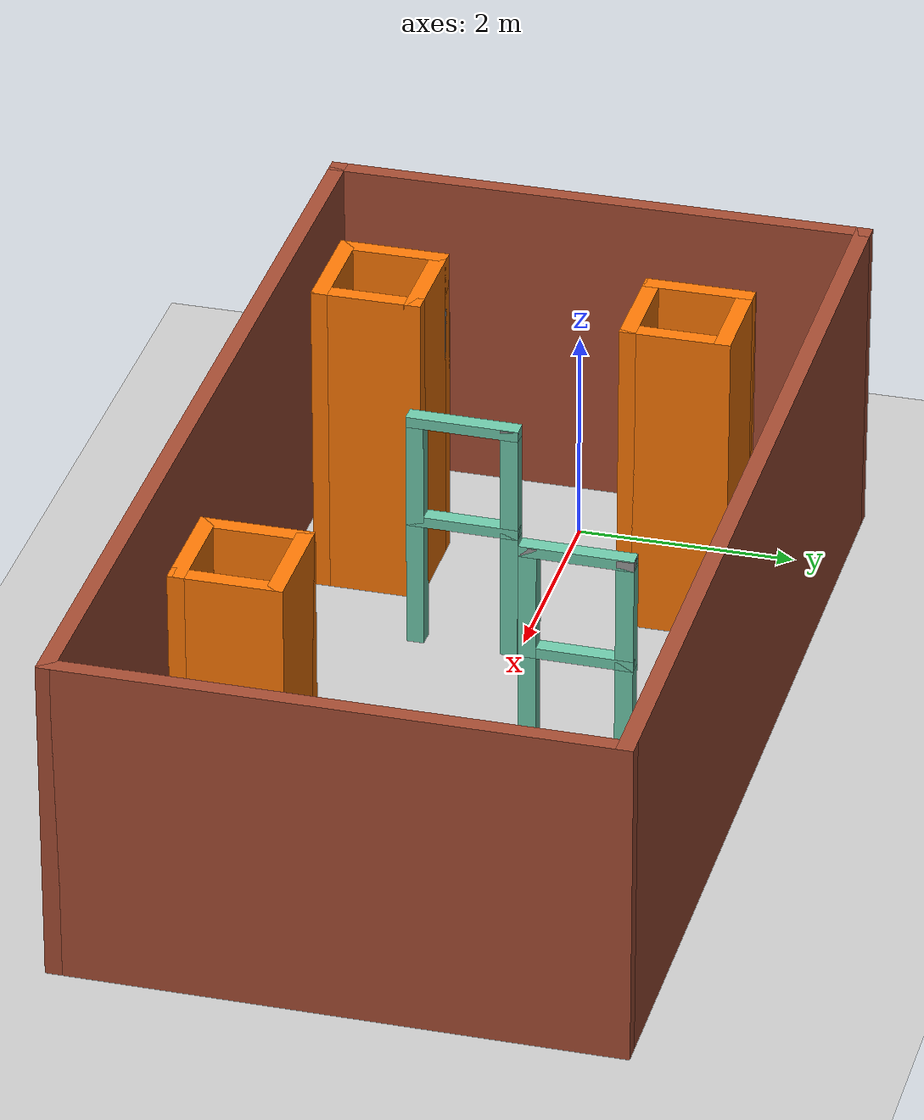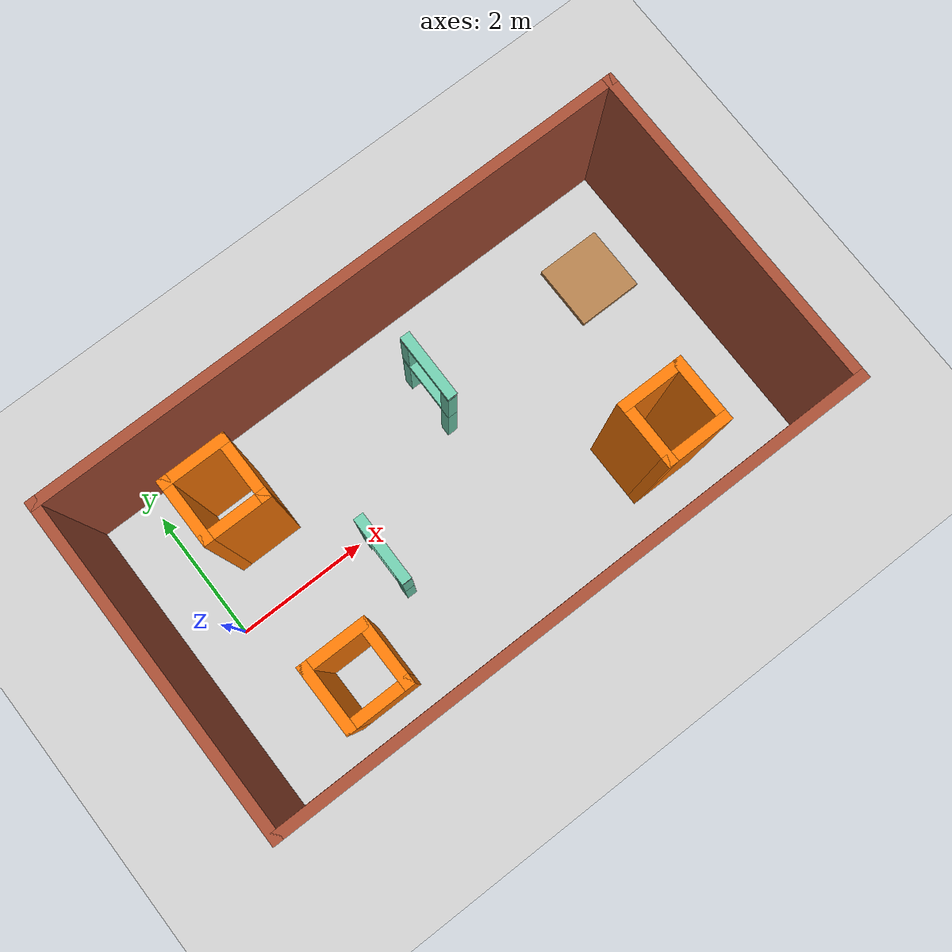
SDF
<sdf version="1.6">
 <world name="default">
  <light name="sun" type="directional">
   <pose>0 0 10 0 -0 0</pose>
   <diffuse>0.8 0.8 0.8 1</diffuse>
   <specular>0.2 0.2 0.2 1</specular>
   <attenuation>
    <range>1000</range>
    <constant>0.9</constant>
    <linear>0.01</linear>
    <quadratic>0.001</quadratic>
   </attenuation>
   <direction>-0.5 0.1 -0.9</direction>
  </light>
  <model name="ground_plane">
   <static>1</static>
   <link name="link">
    <collision name="collision">
     <geometry><plane><normal>0 0 1</normal><size>100 100</size></plane></geometry>
     <surface><friction><ode><mu>100</mu><mu2>50</mu2></ode></friction></surface>
    </collision>
    <visual name="visual">
     <cast_shadows>0</cast_shadows>
     <geometry><plane><normal>0 0 1</normal><size>100 100</size></plane></geometry>
     <material>
      <script><uri>file://media/materials/scripts/gazebo.material</uri><name>Gazebo/Grey</name></script>
     </material>
    </visual>
   </link>
  </model>
  <gravity>0 0 -9.8</gravity>
  <magnetic_field>6e-06 2.3e-05 -4.2e-05</magnetic_field>
  <atmosphere type="adiabatic"/>
  <physics name="default_physics" default="0" type="ode">
   <max_step_size>0.001</max_step_size>
   <real_time_factor>1</real_time_factor>
   <real_time_update_rate>1000</real_time_update_rate>
  </physics>
  <scene><ambient>0.4 0.4 0.4 1</ambient><background>0.7 0.7 0.7 1</background><shadows>1</shadows></scene>
  <spherical_coordinates>
   <surface_model>EARTH_WGS84</surface_model>
   <latitude_deg>0</latitude_deg>
   <longitude_deg>0</longitude_deg>
   <elevation>0</elevation>
   <heading_deg>0</heading_deg>
  </spherical_coordinates>
  <model name="zhuzi_1.2m">
   <pose>2.16567 -0.510013 0 0 -0 1.56043</pose>
   <link name="Floor_0">
    <collision name="Floor_0_Collision">
     <geometry><box><size>1.02 0.15 0.1</size></box></geometry>
     <pose>0 0 0.05 0 -0 0</pose>
    </collision>
    <visual name="Floor_0_Visual">
     <pose>0 0 0.05 0 -0 0</pose>
     <geometry><box><size>1.02 0.15 0.1</size></box></geometry>
     <material>
      <script><uri>file://media/materials/scripts/gazebo.material</uri><name>Gazebo/Grey</name></script>
      <ambient>0.435294 0.796078 0.67451 1</ambient>
     </material>
     <meta><layer>1</layer></meta>
    </visual>
    <pose>0 0 1.2 0 -0 0</pose>
   </link>
   <link name="Floor_1">
    <collision name="Floor_1_Collision">
     <geometry><box><size>1.02 0.15 0.1</size></box></geometry>
     <pose>0 0 0.05 0 -0 0</pose>
    </collision>
    <visual name="Floor_1_Visual">
     <pose>0 0 0.05 0 -0 0</pose>
     <geometry><box><size>1.02 0.15 0.1</size></box></geometry>
     <material>
      <script><uri>file://media/materials/scripts/gazebo.material</uri><name>Gazebo/Grey</name></script>
      <ambient>0.435294 0.796078 0.67451 1</ambient>
     </material>
     <meta><layer>2</layer></meta>
    </visual>
    <pose>0 0 2.2 0 -0 0</pose>
   </link>
   <link name="Wall_0">
    <collision name="Wall_0_Collision">
     <geometry><box><size>0.16 0.15 1.2</size></box></geometry>
     <pose>0 0 0.6 0 -0 0</pose>
    </collision>
    <visual name="Wall_0_Visual">
     <pose>0 0 0.6 0 -0 0</pose>
     <geometry><box><size>0.16 0.15 1.2</size></box></geometry>
     <material>
      <script><uri>file://media/materials/scripts/gazebo.material</uri><name>Gazebo/Grey</name></script>
      <ambient>0.435294 0.796078 0.67451 1</ambient>
     </material>
     <meta><layer>0</layer></meta>
    </visual>
    <pose>-0.43 0 0 0 -0 0</pose>
   </link>
   <link name="Wall_2">
    <collision name="Wall_2_Collision">
     <geometry><box><size>0.16 0.15 1.2</size></box></geometry>
     <pose>0 0 0.6 0 -0 0</pose>
    </collision>
    <visual name="Wall_2_Visual">
     <pose>0 0 0.6 0 -0 0</pose>
     <geometry><box><size>0.16 0.15 1.2</size></box></geometry>
     <material>
      <script><uri>file://media/materials/scripts/gazebo.material</uri><name>Gazebo/Grey</name></script>
      <ambient>0.435294 0.796078 0.67451 1</ambient>
     </material>
     <meta><layer>0</layer></meta>
    </visual>
    <pose>0.43 0 0 0 -0 0</pose>
   </link>
   <link name="Wall_6">
    <collision name="Wall_6_Collision">
     <geometry><box><size>0.16 0.15 1</size></box></geometry>
     <pose>0 0 0.5 0 -0 0</pose>
    </collision>
    <visual name="Wall_6_Visual">
     <pose>0 0 0.5 0 -0 0</pose>
     <geometry><box><size>0.16 0.15 1</size></box></geometry>
     <material>
      <script><uri>file://media/materials/scripts/gazebo.material</uri><name>Gazebo/Grey</name></script>
      <ambient>0.435294 0.796078 0.67451 1</ambient>
     </material>
     <meta><layer>1</layer></meta>
    </visual>
    <pose>-0.43 0 1.2 0 -0 0</pose>
   </link>
   <link name="Wall_7">
    <collision name="Wall_7_Collision">
     <geometry><box><size>0.16 0.15 1</size></box></geometry>
     <pose>0 0 0.5 0 -0 0</pose>
    </collision>
    <visual name="Wall_7_Visual">
     <pose>0 0 0.5 0 -0 0</pose>
     <geometry><box><size>0.16 0.15 1</size></box></geometry>
     <material>
      <script><uri>file://media/materials/scripts/gazebo.material</uri><name>Gazebo/Grey</name></script>
      <ambient>0.435294 0.796078 0.67451 1</ambient>
     </material>
     <meta><layer>1</layer></meta>
    </visual>
    <pose>0.43 0 1.2 0 -0 0</pose>
   </link>
   <link name="Wall_8">
    <collision name="Wall_8_Collision">
     <geometry><box><size>0.16 0.15 0.09</size></box></geometry>
     <pose>0 0 0.045 0 -0 0</pose>
    </collision>
    <visual name="Wall_8_Visual">
     <pose>0 0 0.045 0 -0 0</pose>
     <geometry><box><size>0.16 0.15 0.09</size></box></geometry>
     <material>
      <script><uri>file://media/materials/scripts/gazebo.material</uri><name>Gazebo/Grey</name></script>
      <ambient>1 1 1 1</ambient>
     </material>
     <meta><layer>2</layer></meta>
    </visual>
    <pose>-0.43 0 2.2 0 -0 0</pose>
   </link>
   <link name="Wall_9">
    <collision name="Wall_9_Collision">
     <geometry><box><size>0.16 0.15 0.09</size></box></geometry>
     <pose>0 0 0.045 0 -0 0</pose>
    </collision>
    <visual name="Wall_9_Visual">
     <pose>0 0 0.045 0 -0 0</pose>
     <geometry><box><size>0.16 0.15 0.09</size></box></geometry>
     <material>
      <script><uri>file://media/materials/scripts/gazebo.material</uri><name>Gazebo/Grey</name></script>
      <ambient>1 1 1 1</ambient>
     </material>
     <meta><layer>2</layer></meta>
    </visual>
    <pose>0.43 0 2.2 0 -0 0</pose>
   </link>
   <static>1</static>
  </model>
  <model name="zhuzi_1.2m_clone">
   <pose>4.04105 0.991637 0 0 -0 1.56248</pose>
   <link name="Floor_0">
    <collision name="Floor_0_Collision">
     <geometry><box><size>1.02 0.15 0.1</size></box></geometry>
     <pose>0 0 0.05 0 -0 0</pose>
    </collision>
    <visual name="Floor_0_Visual">
     <pose>0 0 0.05 0 -0 0</pose>
     <geometry><box><size>1.02 0.15 0.1</size></box></geometry>
     <material>
      <script><uri>file://media/materials/scripts/gazebo.material</uri><name>Gazebo/Grey</name></script>
      <ambient>0.435294 0.796078 0.67451 1</ambient>
     </material>
     <meta><layer>1</layer></meta>
    </visual>
    <pose>0 0 1.2 0 -0 0</pose>
   </link>
   <link name="Floor_1">
    <collision name="Floor_1_Collision">
     <geometry><box><size>1.02 0.15 0.1</size></box></geometry>
     <pose>0 0 0.05 0 -0 0</pose>
    </collision>
    <visual name="Floor_1_Visual">
     <pose>0 0 0.05 0 -0 0</pose>
     <geometry><box><size>1.02 0.15 0.1</size></box></geometry>
     <material>
      <script><uri>file://media/materials/scripts/gazebo.material</uri><name>Gazebo/Grey</name></script>
      <ambient>0.435294 0.796078 0.67451 1</ambient>
     </material>
     <meta><layer>2</layer></meta>
    </visual>
    <pose>0 0 2.2 0 -0 0</pose>
   </link>
   <link name="Wall_0">
    <collision name="Wall_0_Collision">
     <geometry><box><size>0.16 0.15 1.2</size></box></geometry>
     <pose>0 0 0.6 0 -0 0</pose>
    </collision>
    <visual name="Wall_0_Visual">
     <pose>0 0 0.6 0 -0 0</pose>
     <geometry><box><size>0.16 0.15 1.2</size></box></geometry>
     <material>
      <script><uri>file://media/materials/scripts/gazebo.material</uri><name>Gazebo/Grey</name></script>
      <ambient>0.435294 0.796078 0.67451 1</ambient>
     </material>
     <meta><layer>0</layer></meta>
    </visual>
    <pose>-0.43 0 0 0 -0 0</pose>
   </link>
   <link name="Wall_2">
    <collision name="Wall_2_Collision">
     <geometry><box><size>0.16 0.15 1.2</size></box></geometry>
     <pose>0 0 0.6 0 -0 0</pose>
    </collision>
    <visual name="Wall_2_Visual">
     <pose>0 0 0.6 0 -0 0</pose>
     <geometry><box><size>0.16 0.15 1.2</size></box></geometry>
     <material>
      <script><uri>file://media/materials/scripts/gazebo.material</uri><name>Gazebo/Grey</name></script>
      <ambient>0.435294 0.796078 0.67451 1</ambient>
     </material>
     <meta><layer>0</layer></meta>
    </visual>
    <pose>0.43 0 0 0 -0 0</pose>
   </link>
   <link name="Wall_6">
    <collision name="Wall_6_Collision">
     <geometry><box><size>0.16 0.15 1</size></box></geometry>
     <pose>0 0 0.5 0 -0 0</pose>
    </collision>
    <visual name="Wall_6_Visual">
     <pose>0 0 0.5 0 -0 0</pose>
     <geometry><box><size>0.16 0.15 1</size></box></geometry>
     <material>
      <script><uri>file://media/materials/scripts/gazebo.material</uri><name>Gazebo/Grey</name></script>
      <ambient>0.435294 0.796078 0.67451 1</ambient>
     </material>
     <meta><layer>1</layer></meta>
    </visual>
    <pose>-0.43 0 1.2 0 -0 0</pose>
   </link>
   <link name="Wall_7">
    <collision name="Wall_7_Collision">
     <geometry><box><size>0.16 0.15 1</size></box></geometry>
     <pose>0 0 0.5 0 -0 0</pose>
    </collision>
    <visual name="Wall_7_Visual">
     <pose>0 0 0.5 0 -0 0</pose>
     <geometry><box><size>0.16 0.15 1</size></box></geometry>
     <material>
      <script><uri>file://media/materials/scripts/gazebo.material</uri><name>Gazebo/Grey</name></script>
      <ambient>0.435294 0.796078 0.67451 1</ambient>
     </material>
     <meta><layer>1</layer></meta>
    </visual>
    <pose>0.43 0 1.2 0 -0 0</pose>
   </link>
   <link name="Wall_8">
    <collision name="Wall_8_Collision">
     <geometry><box><size>0.16 0.15 0.09</size></box></geometry>
     <pose>0 0 0.045 0 -0 0</pose>
    </collision>
    <visual name="Wall_8_Visual">
     <pose>0 0 0.045 0 -0 0</pose>
     <geometry><box><size>0.16 0.15 0.09</size></box></geometry>
     <material>
      <script><uri>file://media/materials/scripts/gazebo.material</uri><name>Gazebo/Grey</name></script>
      <ambient>1 1 1 1</ambient>
     </material>
     <meta><layer>2</layer></meta>
    </visual>
    <pose>-0.43 0 2.2 0 -0 0</pose>
   </link>
   <link name="Wall_9">
    <collision name="Wall_9_Collision">
     <geometry><box><size>0.16 0.15 0.09</size></box></geometry>
     <pose>0 0 0.045 0 -0 0</pose>
    </collision>
    <visual name="Wall_9_Visual">
     <pose>0 0 0.045 0 -0 0</pose>
     <geometry><box><size>0.16 0.15 0.09</size></box></geometry>
     <material>
      <script><uri>file://media/materials/scripts/gazebo.material</uri><name>Gazebo/Grey</name></script>
      <ambient>1 1 1 1</ambient>
     </material>
     <meta><layer>2</layer></meta>
    </visual>
    <pose>0.43 0 2.2 0 -0 0</pose>
   </link>
   <static>1</static>
  </model>
  <model name="fangjian">
   <pose>3.59658 -0.047022 0 0 -0 0</pose>
   <link name="Wall_11">
    <collision name="Wall_11_Collision">
     <geometry><box><size>9 0.15 3</size></box></geometry>
     <pose>0 0 1.5 0 -0 0</pose>
    </collision>
    <visual name="Wall_11_Visual">
     <pose>0 0 1.5 0 -0 0</pose>
     <geometry><box><size>9 0.15 3</size></box></geometry>
     <material>
      <script><uri>file://media/materials/scripts/gazebo.material</uri><name>Gazebo/Bricks</name></script>
      <ambient>1 1 1 1</ambient>
     </material>
     <meta><layer>0</layer></meta>
    </visual>
    <pose>-0 2.434 0 0 -0 0</pose>
   </link>
   <link name="Wall_12">
    <collision name="Wall_12_Collision">
     <geometry><box><size>5.017 0.15 3</size></box></geometry>
     <pose>0 0 1.5 0 -0 0</pose>
    </collision>
    <visual name="Wall_12_Visual">
     <pose>0 0 1.5 0 -0 0</pose>
     <geometry><box><size>5.017 0.15 3</size></box></geometry>
     <material>
      <script><uri>file://media/materials/scripts/gazebo.material</uri><name>Gazebo/Bricks</name></script>
      <ambient>1 1 1 1</ambient>
     </material>
     <meta><layer>0</layer></meta>
    </visual>
    <pose>4.425 0.000504 0 0 -0 -1.5708</pose>
   </link>
   <link name="Wall_13">
    <collision name="Wall_13_Collision">
     <geometry><box><size>9 0.15 3</size></box></geometry>
     <pose>0 0 1.5 0 -0 0</pose>
    </collision>
    <visual name="Wall_13_Visual">
     <pose>0 0 1.5 0 -0 0</pose>
     <geometry><box><size>9 0.15 3</size></box></geometry>
     <material>
      <script><uri>file://media/materials/scripts/gazebo.material</uri><name>Gazebo/Bricks</name></script>
      <ambient>1 1 1 1</ambient>
     </material>
     <meta><layer>0</layer></meta>
    </visual>
    <pose>-0 -2.4335 0 0 -0 -3.14148</pose>
   </link>
   <link name="Wall_14">
    <collision name="Wall_14_Collision">
     <geometry><box><size>5.018 0.15 3</size></box></geometry>
     <pose>0 0 1.5 0 -0 0</pose>
    </collision>
    <visual name="Wall_14_Visual">
     <pose>0 0 1.5 0 -0 0</pose>
     <geometry><box><size>5.018 0.15 3</size></box></geometry>
     <material>
      <script><uri>file://media/materials/scripts/gazebo.material</uri><name>Gazebo/Bricks</name></script>
      <ambient>1 1 1 1</ambient>
     </material>
     <meta><layer>0</layer></meta>
    </visual>
    <pose>-4.425 4e-06 0 0 -0 1.5708</pose>
   </link>
   <static>1</static>
  </model>
  <model name="zhuzi">
   <pose>1.00373 -1.58252 0 0 -0 0</pose>
   <link name="Wall_0">
    <collision name="Wall_0_Collision">
     <geometry><box><size>1 0.15 3</size></box></geometry>
     <pose>0 0 1.5 0 -0 0</pose>
    </collision>
    <visual name="Wall_0_Visual">
     <pose>0 0 1.5 0 -0 0</pose>
     <geometry><box><size>1 0.15 3</size></box></geometry>
     <material>
      <script><uri>file://media/materials/scripts/gazebo.material</uri><name>Gazebo/Grey</name></script>
      <ambient>0.996078 0.47451 0.0196078 1</ambient>
     </material>
     <meta><layer>0</layer></meta>
    </visual>
    <pose>0 0.425 0 0 -0 0</pose>
   </link>
   <link name="Wall_1">
    <collision name="Wall_1_Collision">
     <geometry><box><size>1 0.15 3</size></box></geometry>
     <pose>0 0 1.5 0 -0 0</pose>
    </collision>
    <visual name="Wall_1_Visual">
     <pose>0 0 1.5 0 -0 0</pose>
     <geometry><box><size>1 0.15 3</size></box></geometry>
     <material>
      <script><uri>file://media/materials/scripts/gazebo.material</uri><name>Gazebo/Grey</name></script>
      <ambient>0.996078 0.47451 0.0196078 1</ambient>
     </material>
     <meta><layer>0</layer></meta>
    </visual>
    <pose>0.425 -0 0 0 -0 -1.5708</pose>
   </link>
   <link name="Wall_2">
    <collision name="Wall_2_Collision">
     <geometry><box><size>1 0.15 3</size></box></geometry>
     <pose>0 0 1.5 0 -0 0</pose>
    </collision>
    <visual name="Wall_2_Visual">
     <pose>0 0 1.5 0 -0 0</pose>
     <geometry><box><size>1 0.15 3</size></box></geometry>
     <material>
      <script><uri>file://media/materials/scripts/gazebo.material</uri><name>Gazebo/Grey</name></script>
      <ambient>0.996078 0.47451 0.0196078 1</ambient>
     </material>
     <meta><layer>0</layer></meta>
    </visual>
    <pose>0 -0.425 0 0 -0 3.14159</pose>
   </link>
   <link name="Wall_3">
    <collision name="Wall_3_Collision">
     <geometry><box><size>1 0.15 3</size></box></geometry>
     <pose>0 0 1.5 0 -0 0</pose>
    </collision>
    <visual name="Wall_3_Visual">
     <pose>0 0 1.5 0 -0 0</pose>
     <geometry><box><size>1 0.15 3</size></box></geometry>
     <material>
      <script><uri>file://media/materials/scripts/gazebo.material</uri><name>Gazebo/Grey</name></script>
      <ambient>0.996078 0.47451 0.0196078 1</ambient>
     </material>
     <meta><layer>0</layer></meta>
    </visual>
    <pose>-0.425 -0 0 0 -0 1.5708</pose>
   </link>
   <link name="Wall_4">
    <collision name="Wall_4_Collision">
     <geometry><box><size>0.15 0.15 2.5</size></box></geometry>
     <pose>0 0 1.25 0 -0 0</pose>
    </collision>
    <visual name="Wall_4_Visual">
     <pose>0 0 1.25 0 -0 0</pose>
     <geometry><box><size>0.15 0.15 2.5</size></box></geometry>
     <material>
      <script><uri>file://media/materials/scripts/gazebo.material</uri><name>Gazebo/Grey</name></script>
      <ambient>1 1 1 1</ambient>
     </material>
     <meta><layer>0</layer></meta>
    </visual>
    <pose>-0.425 0.425 0 0 -0 0</pose>
   </link>
   <static>1</static>
  </model>
  <model name="zhuzi_0">
   <pose>0.986806 1.21192 0 0 -0 0</pose>
   <link name="Wall_0">
    <collision name="Wall_0_Collision">
     <geometry><box><size>1 0.15 3</size></box></geometry>
     <pose>0 0 1.5 0 -0 0</pose>
    </collision>
    <visual name="Wall_0_Visual">
     <pose>0 0 1.5 0 -0 0</pose>
     <geometry><box><size>1 0.15 3</size></box></geometry>
     <material>
      <script><uri>file://media/materials/scripts/gazebo.material</uri><name>Gazebo/Grey</name></script>
      <ambient>0.996078 0.47451 0.0196078 1</ambient>
     </material>
     <meta><layer>0</layer></meta>
    </visual>
    <pose>0 0.425 0 0 -0 0</pose>
   </link>
   <link name="Wall_1">
    <collision name="Wall_1_Collision">
     <geometry><box><size>1 0.15 3</size></box></geometry>
     <pose>0 0 1.5 0 -0 0</pose>
    </collision>
    <visual name="Wall_1_Visual">
     <pose>0 0 1.5 0 -0 0</pose>
     <geometry><box><size>1 0.15 3</size></box></geometry>
     <material>
      <script><uri>file://media/materials/scripts/gazebo.material</uri><name>Gazebo/Grey</name></script>
      <ambient>0.996078 0.47451 0.0196078 1</ambient>
     </material>
     <meta><layer>0</layer></meta>
    </visual>
    <pose>0.425 -0 0 0 -0 -1.5708</pose>
   </link>
   <link name="Wall_2">
    <collision name="Wall_2_Collision">
     <geometry><box><size>1 0.15 3</size></box></geometry>
     <pose>0 0 1.5 0 -0 0</pose>
    </collision>
    <visual name="Wall_2_Visual">
     <pose>0 0 1.5 0 -0 0</pose>
     <geometry><box><size>1 0.15 3</size></box></geometry>
     <material>
      <script><uri>file://media/materials/scripts/gazebo.material</uri><name>Gazebo/Grey</name></script>
      <ambient>0.996078 0.47451 0.0196078 1</ambient>
     </material>
     <meta><layer>0</layer></meta>
    </visual>
    <pose>0 -0.425 0 0 -0 3.14159</pose>
   </link>
   <link name="Wall_3">
    <collision name="Wall_3_Collision">
     <geometry><box><size>1 0.15 3</size></box></geometry>
     <pose>0 0 1.5 0 -0 0</pose>
    </collision>
    <visual name="Wall_3_Visual">
     <pose>0 0 1.5 0 -0 0</pose>
     <geometry><box><size>1 0.15 3</size></box></geometry>
     <material>
      <script><uri>file://media/materials/scripts/gazebo.material</uri><name>Gazebo/Grey</name></script>
      <ambient>0.996078 0.47451 0.0196078 1</ambient>
     </material>
     <meta><layer>0</layer></meta>
    </visual>
    <pose>-0.425 -0 0 0 -0 1.5708</pose>
   </link>
   <link name="Wall_4">
    <collision name="Wall_4_Collision">
     <geometry><box><size>0.15 0.15 2.5</size></box></geometry>
     <pose>0 0 1.25 0 -0 0</pose>
    </collision>
    <visual name="Wall_4_Visual">
     <pose>0 0 1.25 0 -0 0</pose>
     <geometry><box><size>0.15 0.15 2.5</size></box></geometry>
     <material>
      <script><uri>file://media/materials/scripts/gazebo.material</uri><name>Gazebo/Grey</name></script>
      <ambient>1 1 1 1</ambient>
     </material>
     <meta><layer>0</layer></meta>
    </visual>
    <pose>-0.425 0.425 0 0 -0 0</pose>
   </link>
   <static>1</static>
  </model>
  <model name="zhuzi_1">
   <pose>5.95012 -1.42787 0 0 -0 0</pose>
   <link name="Wall_0">
    <collision name="Wall_0_Collision">
     <geometry><box><size>1 0.15 3</size></box></geometry>
     <pose>0 0 1.5 0 -0 0</pose>
    </collision>
    <visual name="Wall_0_Visual">
     <pose>0 0 1.5 0 -0 0</pose>
     <geometry><box><size>1 0.15 3</size></box></geometry>
     <material>
      <script><uri>file://media/materials/scripts/gazebo.material</uri><name>Gazebo/Grey</name></script>
      <ambient>0.996078 0.47451 0.0196078 1</ambient>
     </material>
     <meta><layer>0</layer></meta>
    </visual>
    <pose>0 0.425 0 0 -0 0</pose>
   </link>
   <link name="Wall_1">
    <collision name="Wall_1_Collision">
     <geometry><box><size>1 0.15 3</size></box></geometry>
     <pose>0 0 1.5 0 -0 0</pose>
    </collision>
    <visual name="Wall_1_Visual">
     <pose>0 0 1.5 0 -0 0</pose>
     <geometry><box><size>1 0.15 3</size></box></geometry>
     <material>
      <script><uri>file://media/materials/scripts/gazebo.material</uri><name>Gazebo/Grey</name></script>
      <ambient>0.996078 0.47451 0.0196078 1</ambient>
     </material>
     <meta><layer>0</layer></meta>
    </visual>
    <pose>0.425 -0 0 0 -0 -1.5708</pose>
   </link>
   <link name="Wall_2">
    <collision name="Wall_2_Collision">
     <geometry><box><size>1 0.15 3</size></box></geometry>
     <pose>0 0 1.5 0 -0 0</pose>
    </collision>
    <visual name="Wall_2_Visual">
     <pose>0 0 1.5 0 -0 0</pose>
     <geometry><box><size>1 0.15 3</size></box></geometry>
     <material>
      <script><uri>file://media/materials/scripts/gazebo.material</uri><name>Gazebo/Grey</name></script>
      <ambient>0.996078 0.47451 0.0196078 1</ambient>
     </material>
     <meta><layer>0</layer></meta>
    </visual>
    <pose>0 -0.425 0 0 -0 3.14159</pose>
   </link>
   <link name="Wall_3">
    <collision name="Wall_3_Collision">
     <geometry><box><size>1 0.15 3</size></box></geometry>
     <pose>0 0 1.5 0 -0 0</pose>
    </collision>
    <visual name="Wall_3_Visual">
     <pose>0 0 1.5 0 -0 0</pose>
     <geometry><box><size>1 0.15 3</size></box></geometry>
     <material>
      <script><uri>file://media/materials/scripts/gazebo.material</uri><name>Gazebo/Grey</name></script>
      <ambient>0.996078 0.47451 0.0196078 1</ambient>
     </material>
     <meta><layer>0</layer></meta>
    </visual>
    <pose>-0.425 -0 0 0 -0 1.5708</pose>
   </link>
   <link name="Wall_4">
    <collision name="Wall_4_Collision">
     <geometry><box><size>0.15 0.15 2.5</size></box></geometry>
     <pose>0 0 1.25 0 -0 0</pose>
    </collision>
    <visual name="Wall_4_Visual">
     <pose>0 0 1.25 0 -0 0</pose>
     <geometry><box><size>0.15 0.15 2.5</size></box></geometry>
     <material>
      <script><uri>file://media/materials/scripts/gazebo.material</uri><name>Gazebo/Grey</name></script>
      <ambient>1 1 1 1</ambient>
     </material>
     <meta><layer>0</layer></meta>
    </visual>
    <pose>-0.425 0.425 0 0 -0 0</pose>
   </link>
   <static>1</static>
  </model>
  <model name="tingji">
   <pose>7.01513 1.06501 0 0 -0 0</pose>
   <link name="Floor_0">
    <collision name="Floor_0_Collision">
     <geometry><box><size>1 1 0.1</size></box></geometry>
     <pose>0 0 0.05 0 -0 0</pose>
    </collision>
    <visual name="Floor_0_Visual">
     <pose>0 0 0.05 0 -0 0</pose>
     <geometry><box><size>1 1 0.1</size></box></geometry>
     <material>
      <script><uri>file://media/materials/scripts/gazebo.material</uri><name>Gazebo/Wood</name></script>
      <ambient>1 1 1 1</ambient>
     </material>
     <meta><layer>1</layer></meta>
    </visual>
   </link>
   <link name="Floor_1">
    <collision name="Floor_1_Collision">
     <geometry><box><size>1 1 0.1</size></box></geometry>
     <pose>0 0 0.05 0 -0 0</pose>
    </collision>
    <visual name="Floor_1_Visual">
     <pose>0 0 0.05 0 -0 0</pose>
     <geometry><box><size>1 1 0.1</size></box></geometry>
     <material>
      <script><uri>file://media/materials/scripts/gazebo.material</uri><name>Gazebo/Wood</name></script>
      <ambient>1 1 1 1</ambient>
     </material>
     <meta><layer>2</layer></meta>
    </visual>
   </link>
   <link name="Wall_16">
    <collision name="Wall_16_Collision"><geometry><box><size>1 0.15 0</size></box></geometry></collision>
    <visual name="Wall_16_Visual">
     <geometry><box><size>1 0.15 0</size></box></geometry>
     <material>
      <script><uri>file://media/materials/scripts/gazebo.material</uri><name>Gazebo/Wood</name></script>
      <ambient>1 1 1 1</ambient>
     </material>
     <meta><layer>0</layer></meta>
    </visual>
    <pose>-0.425 0 0 0 -0 -1.5708</pose>
   </link>
   <link name="Wall_17">
    <collision name="Wall_17_Collision"><geometry><box><size>1 0.15 0</size></box></geometry></collision>
    <visual name="Wall_17_Visual">
     <geometry><box><size>1 0.15 0</size></box></geometry>
     <material>
      <script><uri>file://media/materials/scripts/gazebo.material</uri><name>Gazebo/Wood</name></script>
      <ambient>1 1 1 1</ambient>
     </material>
     <meta><layer>0</layer></meta>
    </visual>
    <pose>0 -0.425 0 0 -0 0</pose>
   </link>
   <link name="Wall_18">
    <collision name="Wall_18_Collision"><geometry><box><size>1 0.15 0</size></box></geometry></collision>
    <visual name="Wall_18_Visual">
     <geometry><box><size>1 0.15 0</size></box></geometry>
     <material>
      <script><uri>file://media/materials/scripts/gazebo.material</uri><name>Gazebo/Wood</name></script>
      <ambient>1 1 1 1</ambient>
     </material>
     <meta><layer>0</layer></meta>
    </visual>
    <pose>0.425 0 0 0 -0 1.5708</pose>
   </link>
   <link name="Wall_19">
    <collision name="Wall_19_Collision"><geometry><box><size>1 0.15 0</size></box></geometry></collision>
    <visual name="Wall_19_Visual">
     <geometry><box><size>1 0.15 0</size></box></geometry>
     <material>
      <script><uri>file://media/materials/scripts/gazebo.material</uri><name>Gazebo/Wood</name></script>
      <ambient>1 1 1 1</ambient>
     </material>
     <meta><layer>0</layer></meta>
    </visual>
    <pose>0 0.425 0 0 -0 3.14159</pose>
   </link>
   <link name="Wall_21">
    <collision name="Wall_21_Collision"><geometry><box><size>1 0.15 0</size></box></geometry></collision>
    <visual name="Wall_21_Visual">
     <geometry><box><size>1 0.15 0</size></box></geometry>
     <material>
      <script><uri>file://media/materials/scripts/gazebo.material</uri><name>Gazebo/Grey</name></script>
      <ambient>1 1 1 1</ambient>
     </material>
     <meta><layer>1</layer></meta>
    </visual>
    <pose>-0.425 -0 0 0 -0 -1.5708</pose>
   </link>
   <link name="Wall_22">
    <collision name="Wall_22_Collision"><geometry><box><size>1 0.15 0</size></box></geometry></collision>
    <visual name="Wall_22_Visual">
     <geometry><box><size>1 0.15 0</size></box></geometry>
     <material>
      <script><uri>file://media/materials/scripts/gazebo.material</uri><name>Gazebo/Grey</name></script>
      <ambient>1 1 1 1</ambient>
     </material>
     <meta><layer>1</layer></meta>
    </visual>
    <pose>0 -0.425 0 0 -0 0</pose>
   </link>
   <link name="Wall_23">
    <collision name="Wall_23_Collision"><geometry><box><size>1 0.15 0</size></box></geometry></collision>
    <visual name="Wall_23_Visual">
     <geometry><box><size>1 0.15 0</size></box></geometry>
     <material>
      <script><uri>file://media/materials/scripts/gazebo.material</uri><name>Gazebo/Grey</name></script>
      <ambient>1 1 1 1</ambient>
     </material>
     <meta><layer>1</layer></meta>
    </visual>
    <pose>0.425 -0 0 0 -0 1.5708</pose>
   </link>
   <link name="Wall_24">
    <collision name="Wall_24_Collision"><geometry><box><size>1 0.15 0</size></box></geometry></collision>
    <visual name="Wall_24_Visual">
     <geometry><box><size>1 0.15 0</size></box></geometry>
     <material>
      <script><uri>file://media/materials/scripts/gazebo.material</uri><name>Gazebo/Grey</name></script>
      <ambient>1 1 1 1</ambient>
     </material>
     <meta><layer>1</layer></meta>
    </visual>
    <pose>0 0.425 0 0 -0 3.14159</pose>
   </link>
   <link name="Wall_26">
    <collision name="Wall_26_Collision"><geometry><box><size>1 0.15 0</size></box></geometry></collision>
    <visual name="Wall_26_Visual">
     <geometry><box><size>1 0.15 0</size></box></geometry>
     <material>
      <script><uri>file://media/materials/scripts/gazebo.material</uri><name>Gazebo/Grey</name></script>
      <ambient>1 1 1 1</ambient>
     </material>
     <meta><layer>2</layer></meta>
    </visual>
    <pose>-0.425 -0 0 0 -0 -1.5708</pose>
   </link>
   <link name="Wall_27">
    <collision name="Wall_27_Collision"><geometry><box><size>1 0.15 0</size></box></geometry></collision>
    <visual name="Wall_27_Visual">
     <geometry><box><size>1 0.15 0</size></box></geometry>
     <material>
      <script><uri>file://media/materials/scripts/gazebo.material</uri><name>Gazebo/Grey</name></script>
      <ambient>1 1 1 1</ambient>
     </material>
     <meta><layer>2</layer></meta>
    </visual>
    <pose>0 -0.425 0 0 -0 0</pose>
   </link>
   <link name="Wall_28">
    <collision name="Wall_28_Collision"><geometry><box><size>1 0.15 0</size></box></geometry></collision>
    <visual name="Wall_28_Visual">
     <geometry><box><size>1 0.15 0</size></box></geometry>
     <material>
      <script><uri>file://media/materials/scripts/gazebo.material</uri><name>Gazebo/Grey</name></script>
      <ambient>1 1 1 1</ambient>
     </material>
     <meta><layer>2</layer></meta>
    </visual>
    <pose>0.425 -0 0 0 -0 1.5708</pose>
   </link>
   <link name="Wall_29">
    <collision name="Wall_29_Collision"><geometry><box><size>1 0.15 0</size></box></geometry></collision>
    <visual name="Wall_29_Visual">
     <geometry><box><size>1 0.15 0</size></box></geometry>
     <material>
      <script><uri>file://media/materials/scripts/gazebo.material</uri><name>Gazebo/Grey</name></script>
      <ambient>1 1 1 1</ambient>
     </material>
     <meta><layer>2</layer></meta>
    </visual>
    <pose>0 0.425 0 0 -0 3.14159</pose>
   </link>
   <static>1</static>
  </model>
 </world>
</sdf>
